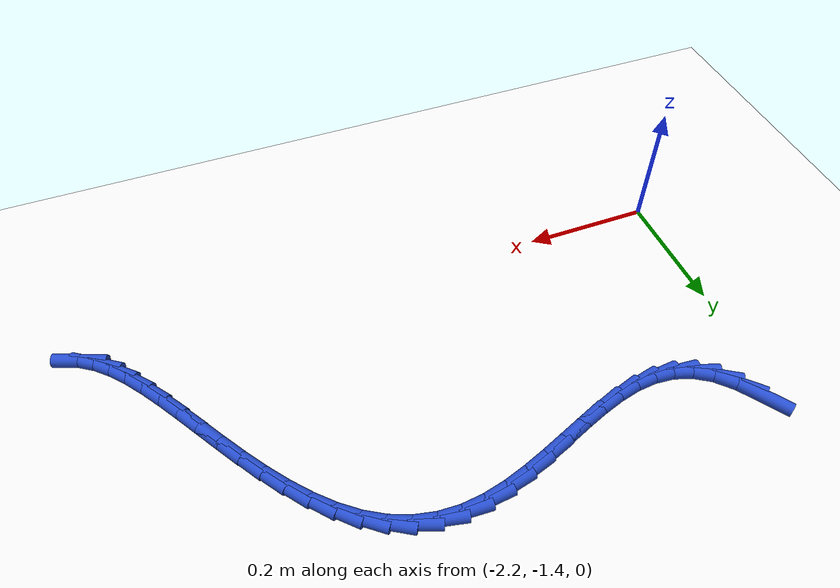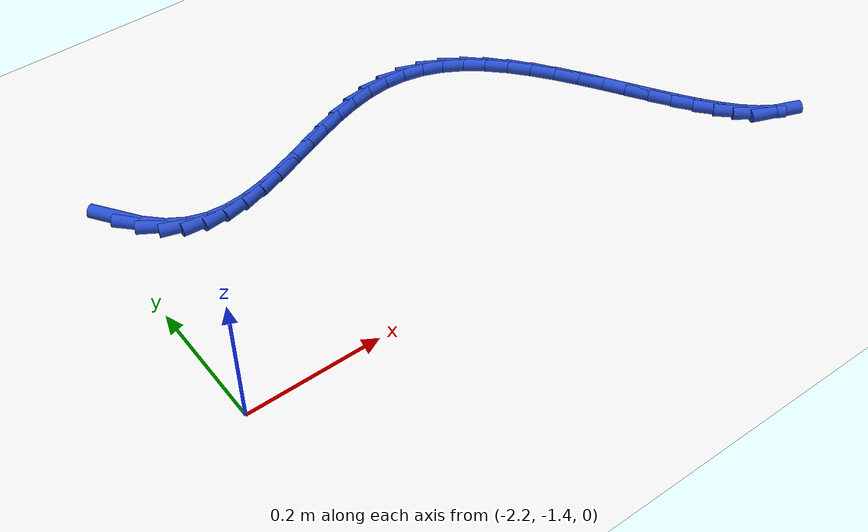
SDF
<sdf version="1.6">
 <world name="default">
  <model name="ground_plane">
   <static>1</static>
   <link name="link">
    <collision name="collision">
     <geometry><plane><normal>0 0 1</normal><size>100 100</size></plane></geometry>
     <surface><friction><ode><mu>100</mu><mu2>50</mu2></ode></friction></surface>
    </collision>
    <visual name="visual">
     <cast_shadows>0</cast_shadows>
     <geometry><plane><normal>0 0 1</normal><size>100 100</size></plane></geometry>
     <material>
      <script><uri>file://media/materials/scripts/gazebo.material</uri><name>Gazebo/WhiteGlow</name></script>
     </material>
    </visual>
   </link>
  </model>
  <model name="line">
   <link name="link_170">
    <pose>-2.1687681400210432 -1.0067379654483504 0.01 0 1.57 -0.9673842763258398</pose>
    <collision name="collision">
     <geometry><cylinder><radius>0.01</radius><length>0.08</length></cylinder></geometry>
    </collision>
    <visual name="visual">
     <material>
      <script><name>Gazebo/Blue</name><uri>file://media/materials/scripts/gazebo.material</uri></script>
     </material>
     <geometry><cylinder><radius>0.01</radius><length>0.08</length></cylinder></geometry>
    </visual>
   </link>
   <link name="link_171">
    <pose>-2.1470788466417274 -1.038210148070985 0.01 0 1.57 -0.7959907722530501</pose>
    <collision name="collision">
     <geometry><cylinder><radius>0.01</radius><length>0.08</length></cylinder></geometry>
    </collision>
    <visual name="visual">
     <material>
      <script><name>Gazebo/Blue</name><uri>file://media/materials/scripts/gazebo.material</uri></script>
     </material>
     <geometry><cylinder><radius>0.01</radius><length>0.08</length></cylinder></geometry>
    </visual>
   </link>
   <link name="link_172">
    <pose>-2.1231706847726644 -1.0626302514983341 0.01 0 1.57 -0.5634934963155278</pose>
    <collision name="collision">
     <geometry><cylinder><radius>0.01</radius><length>0.08</length></cylinder></geometry>
    </collision>
    <visual name="visual">
     <material>
      <script><name>Gazebo/Blue</name><uri>file://media/materials/scripts/gazebo.material</uri></script>
     </material>
     <geometry><cylinder><radius>0.01</radius><length>0.08</length></cylinder></geometry>
    </visual>
   </link>
   <link name="link_173">
    <pose>-2.0972751599947195 -1.0789917408368217 0.01 0 1.57 -0.31177590451020626</pose>
    <collision name="collision">
     <geometry><cylinder><radius>0.01</radius><length>0.08</length></cylinder></geometry>
    </collision>
    <visual name="visual">
     <material>
      <script><name>Gazebo/Blue</name><uri>file://media/materials/scripts/gazebo.material</uri></script>
     </material>
     <geometry><cylinder><radius>0.01</radius><length>0.08</length></cylinder></geometry>
    </visual>
   </link>
   <link name="link_174">
    <pose>-2.069603819666433 -1.0879098472140685 0.01 0 1.57 -0.08631648095132138</pose>
    <collision name="collision">
     <geometry><cylinder><radius>0.01</radius><length>0.08</length></cylinder></geometry>
    </collision>
    <visual name="visual">
     <material>
      <script><name>Gazebo/Blue</name><uri>file://media/materials/scripts/gazebo.material</uri></script>
     </material>
     <geometry><cylinder><radius>0.01</radius><length>0.08</length></cylinder></geometry>
    </visual>
   </link>
   <link name="link_175">
    <pose>-2.0403627924196925 -1.0904401168629747 0.01 0 1.57 0.09130077371535178</pose>
    <collision name="collision">
     <geometry><cylinder><radius>0.01</radius><length>0.08</length></cylinder></geometry>
    </collision>
    <visual name="visual">
     <material>
      <script><name>Gazebo/Blue</name><uri>file://media/materials/scripts/gazebo.material</uri></script>
     </material>
     <geometry><cylinder><radius>0.01</radius><length>0.08</length></cylinder></geometry>
    </visual>
   </link>
   <link name="link_176">
    <pose>-2.009758206782176 -1.0876381044840955 0.01 0 1.57 0.21928433493642682</pose>
    <collision name="collision">
     <geometry><cylinder><radius>0.01</radius><length>0.08</length></cylinder></geometry>
    </collision>
    <visual name="visual">
     <material>
      <script><name>Gazebo/Blue</name><uri>file://media/materials/scripts/gazebo.material</uri></script>
     </material>
     <geometry><cylinder><radius>0.01</radius><length>0.08</length></cylinder></geometry>
    </visual>
   </link>
   <link name="link_177">
    <pose>-1.9779961912815651 -1.080559364777986 0.01 0 1.57 0.3050278222639655</pose>
    <collision name="collision">
     <geometry><cylinder><radius>0.01</radius><length>0.08</length></cylinder></geometry>
    </collision>
    <visual name="visual">
     <material>
      <script><name>Gazebo/Blue</name><uri>file://media/materials/scripts/gazebo.material</uri></script>
     </material>
     <geometry><cylinder><radius>0.01</radius><length>0.08</length></cylinder></geometry>
    </visual>
   </link>
   <link name="link_178">
    <pose>-1.945282874445539 -1.0702594524452014 0.01 0 1.57 0.3566359549762308</pose>
    <collision name="collision">
     <geometry><cylinder><radius>0.01</radius><length>0.08</length></cylinder></geometry>
    </collision>
    <visual name="visual">
     <material>
      <script><name>Gazebo/Blue</name><uri>file://media/materials/scripts/gazebo.material</uri></script>
     </material>
     <geometry><cylinder><radius>0.01</radius><length>0.08</length></cylinder></geometry>
    </visual>
   </link>
   <link name="link_179">
    <pose>-1.911824384801777 -1.0577939221862966 0.01 0 1.57 0.379912377463891</pose>
    <collision name="collision">
     <geometry><cylinder><radius>0.01</radius><length>0.08</length></cylinder></geometry>
    </collision>
    <visual name="visual">
     <material>
      <script><name>Gazebo/Blue</name><uri>file://media/materials/scripts/gazebo.material</uri></script>
     </material>
     <geometry><cylinder><radius>0.01</radius><length>0.08</length></cylinder></geometry>
    </visual>
   </link>
   <link name="link_180">
    <pose>-1.8778268508779592 -1.0442183287018267 0.01 0 1.57 0.37794048353091014</pose>
    <collision name="collision">
     <geometry><cylinder><radius>0.01</radius><length>0.08</length></cylinder></geometry>
    </collision>
    <visual name="visual">
     <material>
      <script><name>Gazebo/Blue</name><uri>file://media/materials/scripts/gazebo.material</uri></script>
     </material>
     <geometry><cylinder><radius>0.01</radius><length>0.08</length></cylinder></geometry>
    </visual>
   </link>
   <link name="link_181">
    <pose>-1.8434964012017663 -1.030588226692347 0.01 0 1.57 0.3513101138524694</pose>
    <collision name="collision">
     <geometry><cylinder><radius>0.01</radius><length>0.08</length></cylinder></geometry>
    </collision>
    <visual name="visual">
     <material>
      <script><name>Gazebo/Blue</name><uri>file://media/materials/scripts/gazebo.material</uri></script>
     </material>
     <geometry><cylinder><radius>0.01</radius><length>0.08</length></cylinder></geometry>
    </visual>
   </link>
   <link name="link_182">
    <pose>-1.8090391643008776 -1.0179591708584121 0.01 0 1.57 0.2983565203257558</pose>
    <collision name="collision">
     <geometry><cylinder><radius>0.01</radius><length>0.08</length></cylinder></geometry>
    </collision>
    <visual name="visual">
     <material>
      <script><name>Gazebo/Blue</name><uri>file://media/materials/scripts/gazebo.material</uri></script>
     </material>
     <geometry><cylinder><radius>0.01</radius><length>0.08</length></cylinder></geometry>
    </visual>
   </link>
   <link name="link_183">
    <pose>-1.7746612687029715 -1.0073867159005774 0.01 0 1.57 0.2154299541520872</pose>
    <collision name="collision">
     <geometry><cylinder><radius>0.01</radius><length>0.08</length></cylinder></geometry>
    </collision>
    <visual name="visual">
     <material>
      <script><name>Gazebo/Blue</name><uri>file://media/materials/scripts/gazebo.material</uri></script>
     </material>
     <geometry><cylinder><radius>0.01</radius><length>0.08</length></cylinder></geometry>
    </visual>
   </link>
   <link name="link_184">
    <pose>-1.74056884293573 -0.999926416519398 0.01 0 1.57 0.0976794577905254</pose>
    <collision name="collision">
     <geometry><cylinder><radius>0.01</radius><length>0.08</length></cylinder></geometry>
    </collision>
    <visual name="visual">
     <material>
      <script><name>Gazebo/Blue</name><uri>file://media/materials/scripts/gazebo.material</uri></script>
     </material>
     <geometry><cylinder><radius>0.01</radius><length>0.08</length></cylinder></geometry>
    </visual>
   </link>
   <link name="link_185">
    <pose>-1.7069680155268305 -0.9966338274154283 0.01 0 1.57 -0.054586455823644346</pose>
    <collision name="collision">
     <geometry><cylinder><radius>0.01</radius><length>0.08</length></cylinder></geometry>
    </collision>
    <visual name="visual">
     <material>
      <script><name>Gazebo/Blue</name><uri>file://media/materials/scripts/gazebo.material</uri></script>
     </material>
     <geometry><cylinder><radius>0.01</radius><length>0.08</length></cylinder></geometry>
    </visual>
   </link>
   <link name="link_186">
    <pose>-1.6740890639498307 -0.9984303575701213 0.01 0 1.57 -0.21803892704663266</pose>
    <collision name="collision">
     <geometry><cylinder><radius>0.01</radius><length>0.08</length></cylinder></geometry>
    </collision>
    <visual name="visual">
     <material>
      <script><name>Gazebo/Blue</name><uri>file://media/materials/scripts/gazebo.material</uri></script>
     </material>
     <geometry><cylinder><radius>0.01</radius><length>0.08</length></cylinder></geometry>
    </visual>
   </link>
   <link name="link_187">
    <pose>-1.6422997620924784 -1.0054736329222804 0.01 0 1.57 -0.3823297305460906</pose>
    <collision name="collision">
     <geometry><cylinder><radius>0.01</radius><length>0.08</length></cylinder></geometry>
    </collision>
    <visual name="visual">
     <material>
      <script><name>Gazebo/Blue</name><uri>file://media/materials/scripts/gazebo.material</uri></script>
     </material>
     <geometry><cylinder><radius>0.01</radius><length>0.08</length></cylinder></geometry>
    </visual>
   </link>
   <link name="link_188">
    <pose>-1.6120162584264341 -1.017651133545158 0.01 0 1.57 -0.5393729528071045</pose>
    <collision name="collision">
     <geometry><cylinder><radius>0.01</radius><length>0.08</length></cylinder></geometry>
    </collision>
    <visual name="visual">
     <material>
      <script><name>Gazebo/Blue</name><uri>file://media/materials/scripts/gazebo.material</uri></script>
     </material>
     <geometry><cylinder><radius>0.01</radius><length>0.08</length></cylinder></geometry>
    </visual>
   </link>
   <link name="link_189">
    <pose>-1.5835130953863352 -1.0347124881310155 0.01 0 1.57 -0.6714120790923434</pose>
    <collision name="collision">
     <geometry><cylinder><radius>0.01</radius><length>0.08</length></cylinder></geometry>
    </collision>
    <visual name="visual">
     <material>
      <script><name>Gazebo/Blue</name><uri>file://media/materials/scripts/gazebo.material</uri></script>
     </material>
     <geometry><cylinder><radius>0.01</radius><length>0.08</length></cylinder></geometry>
    </visual>
   </link>
   <link name="link_190">
    <pose>-1.5566795237513047 -1.0560332405188233 0.01 0 1.57 -0.7765013639857598</pose>
    <collision name="collision">
     <geometry><cylinder><radius>0.01</radius><length>0.08</length></cylinder></geometry>
    </collision>
    <visual name="visual">
     <material>
      <script><name>Gazebo/Blue</name><uri>file://media/materials/scripts/gazebo.material</uri></script>
     </material>
     <geometry><cylinder><radius>0.01</radius><length>0.08</length></cylinder></geometry>
    </visual>
   </link>
   <link name="link_191">
    <pose>-1.5313399090757893 -1.080925936609747 0.01 0 1.57 -0.8577812134680743</pose>
    <collision name="collision">
     <geometry><cylinder><radius>0.01</radius><length>0.08</length></cylinder></geometry>
    </collision>
    <visual name="visual">
     <material>
      <script><name>Gazebo/Blue</name><uri>file://media/materials/scripts/gazebo.material</uri></script>
     </material>
     <geometry><cylinder><radius>0.01</radius><length>0.08</length></cylinder></geometry>
    </visual>
   </link>
   <link name="link_192">
    <pose>-1.507318616914239 -1.1087031223049482 0.01 0 1.57 -0.9188525713098546</pose>
    <collision name="collision">
     <geometry><cylinder><radius>0.01</radius><length>0.08</length></cylinder></geometry>
    </collision>
    <visual name="visual">
     <material>
      <script><name>Gazebo/Blue</name><uri>file://media/materials/scripts/gazebo.material</uri></script>
     </material>
     <geometry><cylinder><radius>0.01</radius><length>0.08</length></cylinder></geometry>
    </visual>
   </link>
   <link name="link_193">
    <pose>-1.4844400128211015 -1.1386773435055908 0.01 0 1.57 -0.9627851406457045</pose>
    <collision name="collision">
     <geometry><cylinder><radius>0.01</radius><length>0.08</length></cylinder></geometry>
    </collision>
    <visual name="visual">
     <material>
      <script><name>Gazebo/Blue</name><uri>file://media/materials/scripts/gazebo.material</uri></script>
     </material>
     <geometry><cylinder><radius>0.01</radius><length>0.08</length></cylinder></geometry>
    </visual>
   </link>
   <link name="link_194">
    <pose>-1.4625284623508248 -1.1701611461128398 0.01 0 1.57 -0.9917866071934829</pose>
    <collision name="collision">
     <geometry><cylinder><radius>0.01</radius><length>0.08</length></cylinder></geometry>
    </collision>
    <visual name="visual">
     <material>
      <script><name>Gazebo/Blue</name><uri>file://media/materials/scripts/gazebo.material</uri></script>
     </material>
     <geometry><cylinder><radius>0.01</radius><length>0.08</length></cylinder></geometry>
    </visual>
   </link>
   <link name="link_195">
    <pose>-1.441408331057859 -1.2024670760278566 0.01 0 1.57 -1.007137603480431</pose>
    <collision name="collision">
     <geometry><cylinder><radius>0.01</radius><length>0.08</length></cylinder></geometry>
    </collision>
    <visual name="visual">
     <material>
      <script><name>Gazebo/Blue</name><uri>file://media/materials/scripts/gazebo.material</uri></script>
     </material>
     <geometry><cylinder><radius>0.01</radius><length>0.08</length></cylinder></geometry>
    </visual>
   </link>
   <link name="link_196">
    <pose>-1.4209039844966505 -1.2349076791518065 0.01 0 1.57 -1.0091739823673724</pose>
    <collision name="collision">
     <geometry><cylinder><radius>0.01</radius><length>0.08</length></cylinder></geometry>
    </collision>
    <visual name="visual">
     <material>
      <script><name>Gazebo/Blue</name><uri>file://media/materials/scripts/gazebo.material</uri></script>
     </material>
     <geometry><cylinder><radius>0.01</radius><length>0.08</length></cylinder></geometry>
    </visual>
   </link>
   <link name="link_197">
    <pose>-1.4008397882216492 -1.2667955013858512 0.01 0 1.57 -0.9972073714303712</pose>
    <collision name="collision">
     <geometry><cylinder><radius>0.01</radius><length>0.08</length></cylinder></geometry>
    </collision>
    <visual name="visual">
     <material>
      <script><name>Gazebo/Blue</name><uri>file://media/materials/scripts/gazebo.material</uri></script>
     </material>
     <geometry><cylinder><radius>0.01</radius><length>0.08</length></cylinder></geometry>
    </visual>
   </link>
   <link name="link_198">
    <pose>-1.3810401077873031 -1.2974430886311563 0.01 0 1.57 -0.9693164107713957</pose>
    <collision name="collision">
     <geometry><cylinder><radius>0.01</radius><length>0.08</length></cylinder></geometry>
    </collision>
    <visual name="visual">
     <material>
      <script><name>Gazebo/Blue</name><uri>file://media/materials/scripts/gazebo.material</uri></script>
     </material>
     <geometry><cylinder><radius>0.01</radius><length>0.08</length></cylinder></geometry>
    </visual>
   </link>
   <link name="link_199">
    <pose>-1.3613293087480614 -1.326162986788883 0.01 0 1.57 -0.9219480100561446</pose>
    <collision name="collision">
     <geometry><cylinder><radius>0.01</radius><length>0.08</length></cylinder></geometry>
    </collision>
    <visual name="visual">
     <material>
      <script><name>Gazebo/Blue</name><uri>file://media/materials/scripts/gazebo.material</uri></script>
     </material>
     <geometry><cylinder><radius>0.01</radius><length>0.08</length></cylinder></geometry>
    </visual>
   </link>
   <link name="link_200">
    <pose>-1.3415317566583715 -1.3522677417601965 0.01 0 1.57 -0.8492887801463652</pose>
    <collision name="collision">
     <geometry><cylinder><radius>0.01</radius><length>0.08</length></cylinder></geometry>
    </collision>
    <visual name="visual">
     <material>
      <script><name>Gazebo/Blue</name><uri>file://media/materials/scripts/gazebo.material</uri></script>
     </material>
     <geometry><cylinder><radius>0.01</radius><length>0.08</length></cylinder></geometry>
    </visual>
   </link>
   <link name="link_201">
    <pose>-1.321471817072683 -1.375069899446259 0.01 0 1.57 -0.7425383336851287</pose>
    <collision name="collision">
     <geometry><cylinder><radius>0.01</radius><length>0.08</length></cylinder></geometry>
    </collision>
    <visual name="visual">
     <material>
      <script><name>Gazebo/Blue</name><uri>file://media/materials/scripts/gazebo.material</uri></script>
     </material>
     <geometry><cylinder><radius>0.01</radius><length>0.08</length></cylinder></geometry>
    </visual>
   </link>
   <link name="link_202">
    <pose>-1.300973855545443 -1.3938820057482355 0.01 0 1.57 -0.5899737651283694</pose>
    <collision name="collision">
     <geometry><cylinder><radius>0.01</radius><length>0.08</length></cylinder></geometry>
    </collision>
    <visual name="visual">
     <material>
      <script><name>Gazebo/Blue</name><uri>file://media/materials/scripts/gazebo.material</uri></script>
     </material>
     <geometry><cylinder><radius>0.01</radius><length>0.08</length></cylinder></geometry>
    </visual>
   </link>
   <link name="link_203">
    <pose>-1.279862237631102 -1.408016606567288 0.01 0 1.57 -0.3808715163859015</pose>
    <collision name="collision">
     <geometry><cylinder><radius>0.01</radius><length>0.08</length></cylinder></geometry>
    </collision>
    <visual name="visual">
     <material>
      <script><name>Gazebo/Blue</name><uri>file://media/materials/scripts/gazebo.material</uri></script>
     </material>
     <geometry><cylinder><radius>0.01</radius><length>0.08</length></cylinder></geometry>
    </visual>
   </link>
  </model>
 </world>
</sdf>
